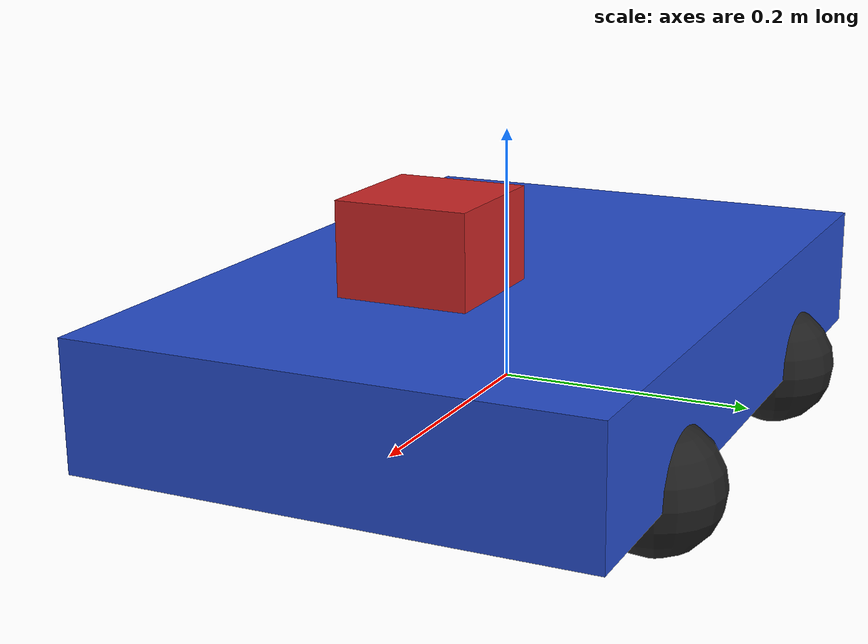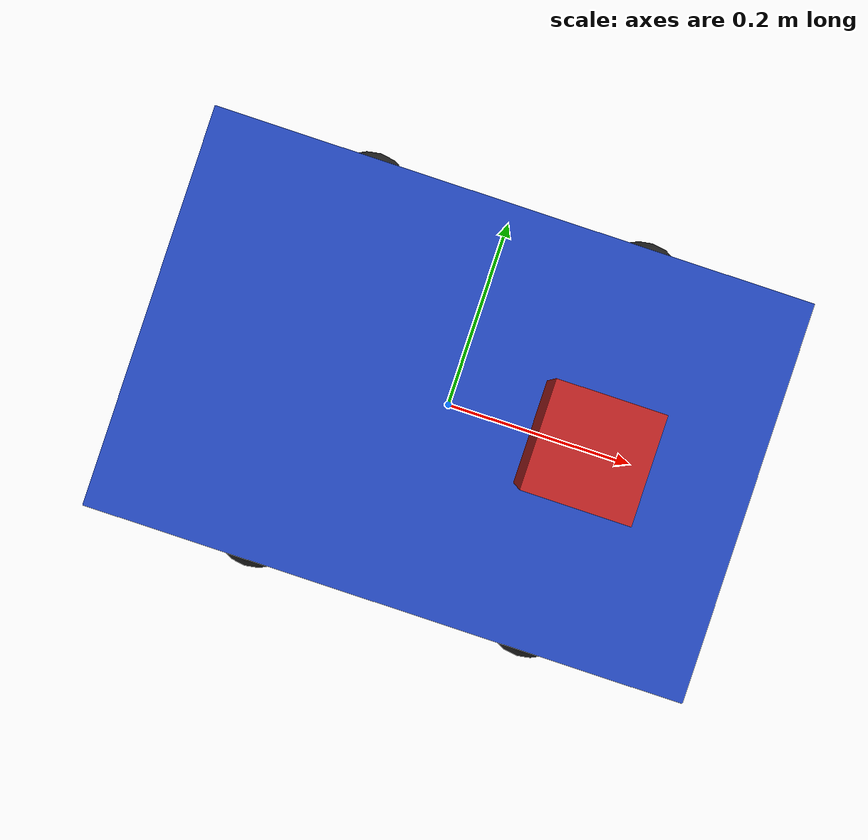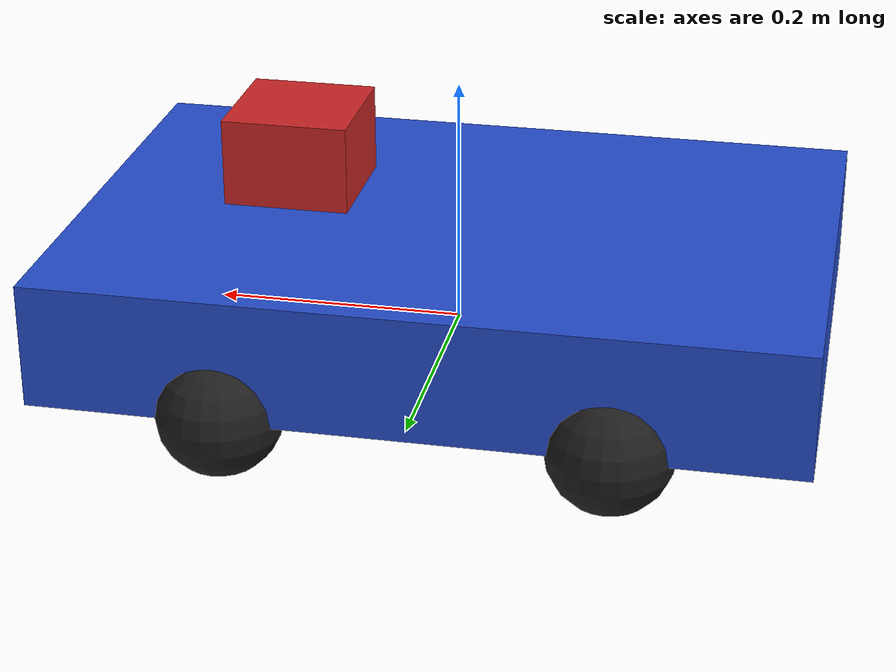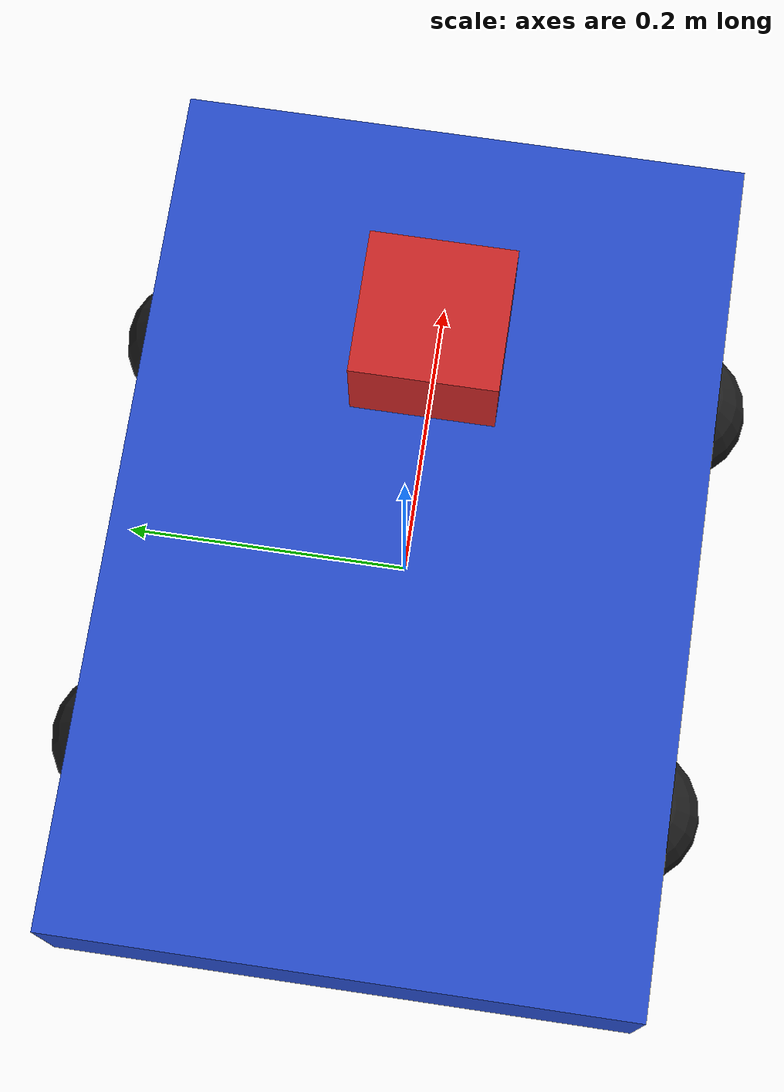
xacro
<?xml version="1.0"?>

<robot xmlns:xacro="http://www.ros.org/wiki/xacro" name="mobile_robot">
  <!--Color palette for robot-->
  <material name="black">
    <color rgba="0.0 0.0 0.0 1.0"/>
  </material>
  <material name="blue">
    <color rgba="0.203125 0.23828125 0.28515625 1.0"/>
  </material>
  <material name="red">
    <color rgba="0.80078125 0.12890625 0.1328125 1.0"/>
  </material>

  <!--reference of color to robot links-->
  <gazebo reference="base_link">
    <material>Gazebo/Blue</material>
  </gazebo>
  <gazebo reference="left_back_wheel_link">
    <material>Gazebo/Black</material>
    <kp>1000000.0</kp> <!-- kp and kd for rubber -->
	<kd>100.0</kd>
	<mu1>1.0</mu1>
	<mu2>1.0</mu2>
	<maxVel>1.0</maxVel>
	<minDepth>0.00</minDepth>
  </gazebo>
  <gazebo reference="right_back_wheel_link">
    <material>Gazebo/Black</material>
    <kp>1000000.0</kp> <!-- kp and kd for rubber -->
	<kd>100.0</kd>
	<mu1>1.0</mu1>
	<mu2>1.0</mu2>
	<maxVel>1.0</maxVel>
	<minDepth>0.00</minDepth>
  </gazebo>
  <gazebo reference="left_front_wheel_link">
    <material>Gazebo/Black</material>
    <kp>1000000.0</kp> <!-- kp and kd for rubber -->
	<kd>100.0</kd>
	<mu1>1.0</mu1>
	<mu2>1.0</mu2>
	<maxVel>1.0</maxVel>
	<minDepth>0.00</minDepth>
  </gazebo>
  <gazebo reference="ultrasonic_sensor_link">
    <material>Gazebo/Red</material>
  </gazebo>
  <gazebo reference="right_front_wheel_link">
    <material>Gazebo/Black</material>
    <kp>1000000.0</kp> <!-- kp and kd for rubber -->
	<kd>100.0</kd>
	<mu1>1.0</mu1>
	<mu2>1.0</mu2>
	<maxVel>1.0</maxVel>
	<minDepth>0.00</minDepth>
  </gazebo>

  <!-- Define the mobile robot's base -->
  <link name="base_footprint">
    <inertia m="1.0" w="0.001" h="0.001" d="0.001"/>
    <visual>
        <origin xyz="0 0 0" rpy="0 0 0" />
        <geometry>
            <box size="0.001 0.001 0.001" />
        </geometry>
    </visual>
  </link>
  <link name="base_link">
    <inertial>
      <mass value="1.0" />
      <origin xyz="0 0 0.1" />
      <inertia ixx="0.083" ixy="0.0" ixz="0.0" iyy="0.083" iyz="0.0" izz="0.083" />
    </inertial>
    <collision>
      <geometry>
        <box size=".6 .4 .1" />
      </geometry>
    </collision>
    <visual>
      <geometry>
        <box size=".6 .4 .1" />
      </geometry>
    </visual>
  </link>

  <!--base_link to base_footprint Joint-->
  <joint name="base_link_joint" type="fixed">
    <origin xyz="0 0 0.04" rpy="0 0 0" />
    <parent link="base_footprint"/>
    <child link="base_link" />
  </joint>

  <!-- Define the wheels -->
  <link name="left_back_wheel_link">
    <inertial>
      <mass value="0.1" />
      <origin xyz="0 0 0" />
      <inertia ixx="0.1" ixy="0.0" ixz="0.0" iyy="0.1" iyz="0.0" izz="0.1" />
    </inertial>
    <collision>
    <origin xyz="0 0 -0.05" rpy=" 0 0 0"/>
      <geometry>
        <sphere radius="0.05" />
      </geometry>
    </collision>
    <visual>
    <origin xyz="0 0 -0.05" rpy=" 0 0 0"/>
      <geometry>
        <sphere radius="0.05" />
      </geometry>
    </visual>
  </link>

  <joint name="left_back_wheel_joint" type="continuous">
    <parent link="base_link" />
    <child link="left_back_wheel_link" />
    <origin xyz="-0.15 -0.18 0" rpy="0 0 0" />
    <axis xyz="0 0 1" />
    <limit effort="10000" velocity="1000" />
	<dynamics damping="1.0" friction="1.0" />
  </joint>

  <!--   Joint transmission for left back wheel -->
  <transmission name="left_back_wheel_transmission">
    <type>transmission_interface/SimpleTransmission</type>
    <joint name="left_back_wheel_joint">
      <hardwareInterface>hardware_interface/VelocityJointInterface</hardwareInterface>
    </joint>
    <actuator name="left_back_wheel_actuator">
      <mechanicalReduction>1</mechanicalReduction>
      <hardwareInterface>VelocityJointInterface</hardwareInterface>
    </actuator>
  </transmission>

  <link name="left_front_wheel_link">
    <inertial>
      <mass value="0.1" />
      <origin xyz="0 0 0" />
      <inertia ixx="0.1" ixy="0.0" ixz="0.0" iyy="0.1" iyz="0.0" izz="0.1" />
    </inertial>
    <collision>
    <origin xyz="0 0 -0.05" rpy=" 0 0 0"/>
      <geometry>
        <sphere radius="0.05" />
      </geometry>
    </collision>
    <visual>
    <origin xyz="0 0 -0.05" rpy=" 0 0 0"/>
      <geometry>
        <sphere radius="0.05" />
      </geometry>
    </visual>
  </link>

  <joint name="left_front_wheel_joint" type="continuous">
    <parent link="base_link" />
    <child link="left_front_wheel_link" />
    <origin xyz="0.15 -0.18 0" rpy="0 0 0" />
    <axis xyz="0 0 1" />
    <limit effort="10000" velocity="1000" />
	<dynamics damping="1.0" friction="1.0" />
  </joint>

  <!--   Joint transmission for left front wheel -->
  <transmission name="left_front_wheel_transmission">
    <type>transmission_interface/SimpleTransmission</type>
    <joint name="left_front_wheel_joint">
      <hardwareInterface>hardware_interface/VelocityJointInterface</hardwareInterface>
    </joint>
    <actuator name="left_front_wheel_actuator">
      <mechanicalReduction>1</mechanicalReduction>
      <hardwareInterface>VelocityJointInterface</hardwareInterface>
    </actuator>
  </transmission>

  <link name="right_back_wheel_link">
    <inertial>
      <mass value="0.1" />
      <origin xyz="0 0 0" />
      <inertia ixx="0.1" ixy="0.0" ixz="0.0" iyy="0.1" iyz="0.0" izz="0.1" />
    </inertial>
    <collision>
    <origin xyz="0 0 -0.05" rpy=" 0 0 0"/>
      <geometry>
        <sphere radius="0.05" />
      </geometry>
    </collision>
    <visual>
    <origin xyz="0 0 -0.05" rpy=" 0 0 0"/>
      <geometry>
        <sphere radius="0.05" />
      </geometry>
    </visual>
  </link>

  <joint name="right_back_wheel_joint" type="continuous">
    <parent link="base_link" />
    <child link="right_back_wheel_link" />
    <origin xyz="-0.15 0.18 0" rpy="0 0 0" />
    <axis xyz="0 0 1" />
    <limit effort="10000" velocity="1000" />
	<dynamics damping="1.0" friction="1.0" />
  </joint>

  <!-- Joint transmission for right back wheel -->
  <transmission name="right_back_wheel_transmission">
    <type>transmission_interface/SimpleTransmission</type>
    <joint name="right_back_wheel_joint">
      <hardwareInterface>hardware_interface/VelocityJointInterface</hardwareInterface>
    </joint>
    <actuator name="right_back_wheel_actuator">
      <mechanicalReduction>1</mechanicalReduction>
      <hardwareInterface>VelocityJointInterface</hardwareInterface>
    </actuator>
  </transmission>

  <link name="right_front_wheel_link">
    <inertial>
      <mass value="0.1" />
      <origin xyz="0 0 0" />
      <inertia ixx="0.1" ixy="0.0" ixz="0.0" iyy="0.1" iyz="0.0" izz="0.1" />
    </inertial>
    <collision>
    <origin xyz="0 0 -0.05" rpy=" 0 0 0"/>
      <geometry>
        <sphere radius="0.05" />
      </geometry>
    </collision>
    <visual>
    <origin xyz="0 0 -0.05" rpy=" 0 0 0"/>
      <geometry>
        <sphere radius="0.05" />
      </geometry>
    </visual>
  </link>

  <joint name="right_front_wheel_joint" type="continuous">
    <parent link="base_link" />
    <child link="right_front_wheel_link" />
    <origin xyz="0.15 0.18 0" rpy="0 0 0" />
    <axis xyz="0 0 1" />
    <limit effort="10000" velocity="1000" />
	<dynamics damping="1.0" friction="1.0" />
  </joint>

  <!-- Joint transmission for right front wheel -->
  <transmission name="right_front_wheel_transmission">
    <type>transmission_interface/SimpleTransmission</type>
    <joint name="right_front_wheel_joint">
      <hardwareInterface>hardware_interface/VelocityJointInterface</hardwareInterface>
    </joint>
    <actuator name="right_front_wheel_actuator">
      <mechanicalReduction>1</mechanicalReduction>
      <hardwareInterface>VelocityJointInterface</hardwareInterface>
    </actuator>
  </transmission>

  <link name="ultrasonic_sensor_link">
    <collision>
      <geometry>
        <box size="0.1 0.1 0.07"/>
      </geometry>
    </collision>
    <visual>
      <geometry>
        <box size="0.1 0.1 0.07"/>
      </geometry>
    </visual>
  </link>

  <joint name="ultrasonic_sensor_joint" type="fixed">
    <origin xyz="0.13 0 0.1"/>
    <parent link="base_link"/>
    <child link="ultrasonic_sensor_link"/>
  </joint>

  <xacro:include filename="$(find my_robot)/urdf/include/urdf1.gazebo" />
</robot>
